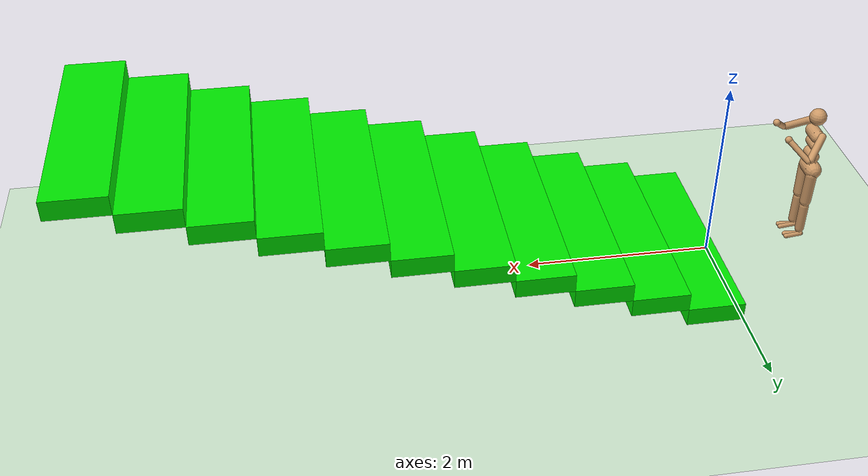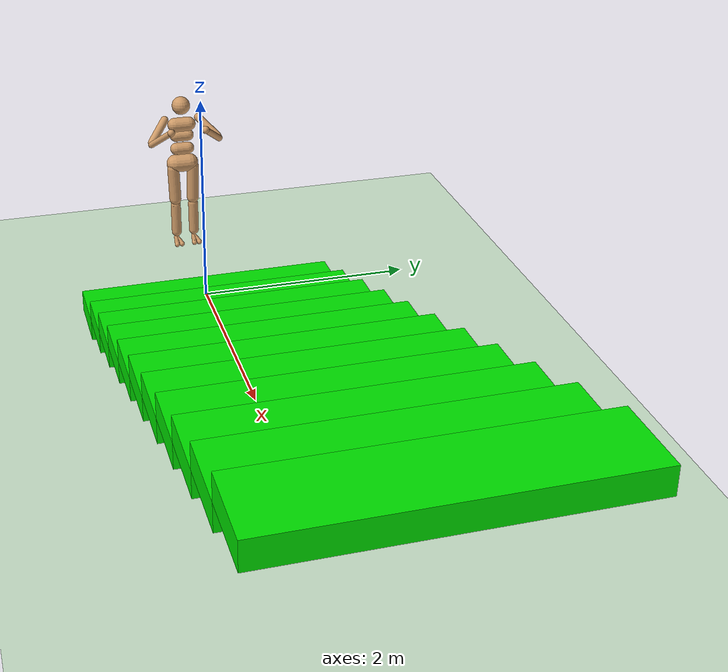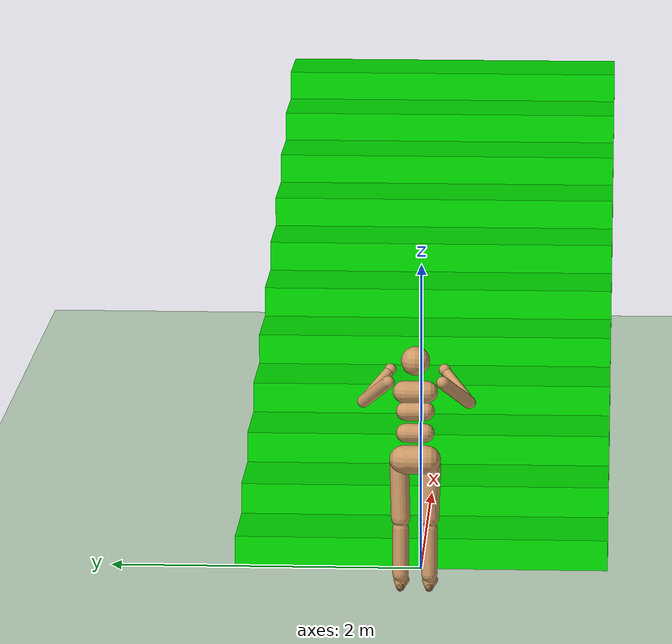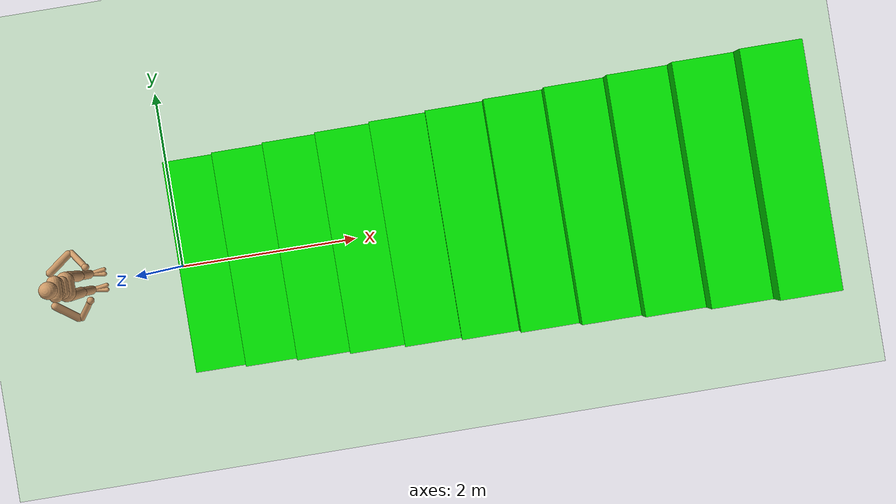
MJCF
<?xml version='1.0' encoding='utf-8'?>
<mujoco model="humanoid">
	<compiler angle="degree" inertiafromgeom="true" />
	<default>
		<joint armature="1" damping="1" limited="true" />
		<geom conaffinity="1" condim="1" contype="1" margin="0.001" material="geom" rgba="0.8 0.6 .4 1" />
		<motor ctrllimited="true" ctrlrange="-.4 .4" />
	</default>
	<option integrator="RK4" iterations="50" solver="PGS" timestep="0.003" gravity="0 0 -9.8" />
	<size nkey="5" nuser_geom="1" />
	<visual>
		<map fogend="5" fogstart="3" />
	</visual>
	<asset>
		<texture builtin="gradient" height="100" rgb1=".4 .5 .6" rgb2="0 0 0" type="skybox" width="100" />
		<texture builtin="flat" height="1278" mark="cross" markrgb="1 1 1" name="texgeom" random="0.01" rgb1="0.8 0.6 0.4" rgb2="0.8 0.6 0.4" type="cube" width="127" />
		<texture builtin="checker" height="100" name="texplane" random="0.01" rgb1="0 0 0" rgb2="0.8 0.8 0.8" type="2d" width="100" />
		<material name="MatPlane" reflectance="0.5" shininess="1" specular="1" texrepeat="60 60" texture="texplane" />
		<material name="geom" texture="texgeom" texuniform="true" />
	</asset>
	<worldbody>
		<light cutoff="100" diffuse="1 1 1" dir="-0 0 -1.3" directional="true" exponent="1" pos="0 0 1.3" specular=".1 .1 .1" />
		<geom condim="3" friction="1 .1 .1" material="MatPlane" name="flatfloor" pos="0 0 0" rgba="0.8 0.9 0.8 1" size="20 20 2" type="plane" />
		<geom type="box" size="0.3 1.2 0.1" pos="0.3 0 0.1" rgba="0 .9 0 1" condim="3" friction="1 .1 .1" name="step1" />
		<geom type="box" size="0.3 1.2 0.1" pos="0.9 0 0.3" rgba="0 .9 0 1" condim="3" friction="1 .1 .1" name="step2" />
		<geom type="box" size="0.3 1.2 0.1" pos="1.5 0 0.5" rgba="0 .9 0 1" condim="3" friction="1 .1 .1" name="step3" />
		<geom type="box" size="0.3 1.2 0.1" pos="2.1 0 0.7" rgba="0 .9 0 1" condim="3" friction="1 .1 .1" name="step4" />
		<geom type="box" size="0.3 1.2 0.1" pos="2.7 0 0.9" rgba="0 .9 0 1" condim="3" friction="1 .1 .1" name="step5" />
		<geom type="box" size="0.3 1.2 0.1" pos="3.3 0 1.1" rgba="0 .9 0 1" condim="3" friction="1 .1 .1" name="step6" />
		<geom type="box" size="0.3 1.2 0.1" pos="3.9 0 1.3" rgba="0 .9 0 1" condim="3" friction="1 .1 .1" name="step7" />
		<geom type="box" size="0.3 1.2 0.1" pos="4.5 0 1.5" rgba="0 .9 0 1" condim="3" friction="1 .1 .1" name="step8" />
		<geom type="box" size="0.3 1.2 0.1" pos="5.1 0 1.7" rgba="0 .9 0 1" condim="3" friction="1 .1 .1" name="step9" />
		<geom type="box" size="0.3 1.2 0.1" pos="5.7 0 1.9" rgba="0 .9 0 1" condim="3" friction="1 .1 .1" name="step10" />
		<geom type="box" size="0.3 1.2 0.1" pos="6.3 0 2.1" rgba="0 .9 0 1" condim="3" friction="1 .1 .1" name="step11" />
		<body name="torso" pos="-1 0 1.4">
			<camera name="track" mode="trackcom" pos="0 -4 0" xyaxes="1 0 0 0 0 1" />
			<joint name="root" type="free" armature="0" limited="false" pos="0 0 0" stiffness="0" damping="0" />
			<geom name="torso_geom" type="capsule" size="0.07" fromto="0 -0.07 0 0 0.07 0" />
			<geom name="head_geom" type="sphere" size="0.09" pos="0 0 0.198" user="258" />
			<geom name="uwaist_geom" type="capsule" size="0.06" fromto="-0.01 -0.06 -0.12 -0.01 0.06 -0.12" />
			<body name="lwaist" pos="-.01 0 -0.26" quat="1.000 0 -0.002 0">
				<geom name="lwaist_geom" type="capsule" size="0.06" fromto="0 -0.06 0 0 0.06 0" />
				<joint name="abdomen_z" type="hinge" armature="0.02" axis="0 0 1" pos="0 0 0.065" range="-45 45" stiffness="20" damping="5" />
				<joint name="abdomen_y" type="hinge" armature="0.02" axis="0 1 0" pos="0 0 0.065" range="-75 30" stiffness="10" damping="5" />
				<body name="pelvis" pos="0 0 -0.165" quat="1.000 0 -0.002 0">
					<joint name="abdomen_x" type="hinge" armature="0.02" axis="1 0 0" pos="0 0 0.1" range="-35 35" stiffness="10" damping="5" />
					<geom name="pelvis_geom" type="capsule" size="0.09" fromto="-0.02 -0.07 0 -0.02 0.07 0" />
					<body name="right_thigh" pos="0 -0.1 -0.04">
						<joint name="right_hip_x" type="hinge" armature="0.01" axis="1 0 0" pos="0 0 0" range="-25 5" stiffness="10" damping="5" />
						<joint name="right_hip_z" type="hinge" armature="0.01" axis="0 0 1" pos="0 0 0" range="-60 35" stiffness="10" damping="5" />
						<joint name="right_hip_y" type="hinge" armature="0.01" axis="0 1 0" pos="0 0 0" range="-110 20" stiffness="20" damping="5" />
						<geom name="right_thigh_geom" type="capsule" size="0.06" fromto="0 0 0 0 0.01 -0.34" />
						<body name="right_shin" pos="0 0.01 -0.403">
							<joint name="right_knee" type="hinge" armature="0.006" axis="0 -1 0" pos="0 0 0.02" range="-160 -2" />
							<geom name="right_shin_geom" type="capsule" size="0.05" fromto="0 0 0 0 0 -0.3" />
							<body name="right_foot" pos="0 0 -0.38">
								<joint name="right_ankle" type="hinge" armature="0.006" axis="0 1 0" pos="0 0 0" range="-45 25" />
								<geom name="right_foot_geom_1" type="capsule" size="0.025" fromto="-0.03 0 0 0.14824825237348266 0.02505115817281178 0" />
								<geom name="right_foot_geom_2" type="capsule" size="0.025" fromto="-0.03 0 0 0.14824825237348266 -0.02505115817281178 0" />
							</body>
						</body>
					</body>
					<body name="left_thigh" pos="0 0.1 -0.04">
						<joint name="left_hip_x" type="hinge" armature="0.01" axis="-1 0 0" pos="0 0 0" range="-25 5" stiffness="10" damping="5" />
						<joint name="left_hip_z" type="hinge" armature="0.01" axis="0 0 -1" pos="0 0 0" range="-60 35" stiffness="10" damping="5" />
						<joint name="left_hip_y" type="hinge" armature="0.01" axis="0 1 0" pos="0 0 0" range="-110 20" stiffness="20" damping="5" />
						<geom name="left_thigh_geom" type="capsule" size="0.06" fromto="0 0 0 0 -0.01 -0.34" />
						<body name="left_shin" pos="0 -0.01 -0.403">
							<joint name="left_knee" type="hinge" armature="0.006" axis="0 -1 0" pos="0 0 0.02" range="-160 -2" />
							<geom name="left_shin_geom" type="capsule" size="0.05" fromto="0 0 0 0 0 -0.3" />
							<body name="left_foot" pos="0 0 -0.38">
								<joint name="left_ankle" type="hinge" armature="0.006" axis="0 1 0" pos="0 0 0" range="-45 25" />
								<geom name="left_foot_geom_1" type="capsule" size="0.025" fromto="-0.03 0 0 0.14824825237348266 0.02505115817281178 0" />
								<geom name="left_foot_geom_2" type="capsule" size="0.025" fromto="-0.03 0 0 0.14824825237348266 -0.02505115817281178 0" />
							</body>
						</body>
					</body>
				</body>
			</body>
			<body name="right_upper_arm" pos="0 -0.17 0.06">
				<joint name="right_shoulder1" type="hinge" armature="0.0068" axis="2 1 1" pos="0 0 0" range="-85 60" stiffness="1" />
				<joint name="right_shoulder2" type="hinge" armature="0.0051" axis="0 -1 1" pos="0 0 0" range="-85 60" stiffness="1" />
				<geom name="right_upper_arm_geom" type="capsule" size="0.04" fromto="0 0 0 0.15998375959244532 -0.15998375959244532 -0.15998375959244532" />
				<body name="right_lower_arm" pos="0.1799837595924453 -0.1799837595924453 -0.1799837595924453">
					<joint name="right_elbow" type="hinge" armature="0.0028" axis="0 -1 1" pos="0 0 0" range="-90 50" stiffness="0" />
					<geom name="right_lower_arm_geom" type="capsule" size="0.031" fromto="0.01 0.01 0.01 0.1699719192494258 0.1699719192494258 0.1699719192494258" />
					<geom name="right_hand" type="sphere" size="0.0372" pos="0.17997191924942582 0.17997191924942582 0.17997191924942582" />
				</body>
			</body>
			<body name="left_upper_arm" pos="0 0.17 0.06">
				<joint name="left_shoulder1" type="hinge" armature="0.0068" axis="2 -1 1" pos="0 0 0" range="-60 85" stiffness="1" />
				<joint name="left_shoulder2" type="hinge" armature="0.0051" axis="0 1 1" pos="0 0 0" range="-60 85" stiffness="1" />
				<geom name="left_upper_arm_geom" type="capsule" size="0.04" fromto="0 0 0 0.15998375959244532 0.15998375959244532 -0.15998375959244532" />
				<body name="left_lower_arm" pos="0.1799837595924453 0.1799837595924453 -0.1799837595924453">
					<joint name="left_elbow" type="hinge" armature="0.0028" axis="0 -1 -1" pos="0 0 0" range="-90 50" stiffness="0" />
					<geom name="left_lower_arm_geom" type="capsule" size="0.031" fromto="0.01 -0.01 0.01 0.1699719192494258 -0.1699719192494258 0.1699719192494258" />
					<geom name="left_hand" type="sphere" size="0.0372" pos="0.17997191924942582 -0.17997191924942582 0.17997191924942582" />
				</body>
			</body>
		</body>
	</worldbody>
	<tendon>
		<fixed name="left_hipknee">
			<joint coef="-1" joint="left_hip_y" />
			<joint coef="1" joint="left_knee" />
		</fixed>
		<fixed name="right_hipknee">
			<joint coef="-1" joint="right_hip_y" />
			<joint coef="1" joint="right_knee" />
		</fixed>
	</tendon>
	<actuator>
		<motor gear="100" joint="abdomen_y" name="abdomen_y" />
		<motor gear="100" joint="abdomen_z" name="abdomen_z" />
		<motor gear="100" joint="abdomen_x" name="abdomen_x" />
		<motor gear="100" joint="right_hip_x" name="right_hip_x" />
		<motor gear="100" joint="right_hip_z" name="right_hip_z" />
		<motor gear="300" joint="right_hip_y" name="right_hip_y" />
		<motor gear="200" joint="right_knee" name="right_knee" />
		<motor gear="50" joint="right_ankle" name="right_ankle" />
		<motor gear="100" joint="left_hip_x" name="left_hip_x" />
		<motor gear="100" joint="left_hip_z" name="left_hip_z" />
		<motor gear="300" joint="left_hip_y" name="left_hip_y" />
		<motor gear="200" joint="left_knee" name="left_knee" />
		<motor gear="50" joint="left_ankle" name="left_ankle" />
		<motor gear="25" joint="right_shoulder1" name="right_shoulder1" />
		<motor gear="25" joint="right_shoulder2" name="right_shoulder2" />
		<motor gear="25" joint="right_elbow" name="right_elbow" />
		<motor gear="25" joint="left_shoulder1" name="left_shoulder1" />
		<motor gear="25" joint="left_shoulder2" name="left_shoulder2" />
		<motor gear="25" joint="left_elbow" name="left_elbow" />
	</actuator>
</mujoco>
